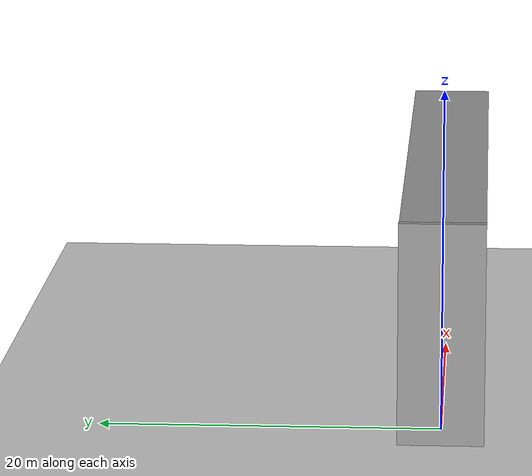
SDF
<sdf version="1.5">
 <world name="default">
  <plugin name="ros_interface_plugin" filename="librotors_gazebo_ros_interface_plugin.so"/>
  <light name="sun" type="directional">
   <pose>0 0 10 0 0 0</pose>
   <diffuse>0.8 0.8 0.8 1</diffuse>
   <specular>0.2 0.2 0.2 1</specular>
   <attenuation>
    <range>1000</range>
    <constant>0.9</constant>
    <linear>0.01</linear>
    <quadratic>0.001</quadratic>
   </attenuation>
   <direction>-0.5 0.1 -0.9</direction>
  </light>
  <model name="ground_plane">
   <static>1</static>
   <link name="ground_plane_link">
    <collision name="collision">
     <geometry><plane><normal>0 0 1</normal><size>100 100</size></plane></geometry>
     <surface><friction><ode><mu>100</mu><mu2>50</mu2></ode></friction></surface>
    </collision>
    <visual name="visual">
     <cast_shadows>0</cast_shadows>
     <geometry><plane><normal>0 0 1</normal><size>100 100</size></plane></geometry>
     <material>
      <script><uri>file://media/materials/scripts/gazebo.material</uri><name>Gazebo/Grey</name></script>
     </material>
    </visual>
   </link>
  </model>
  <gravity>0 0 -9.8</gravity>
  <magnetic_field>6e-06 2.3e-05 -4.2e-05</magnetic_field>
  <atmosphere type="adiabatic"/>
  <physics name="default_physics" default="0" type="ode">
   <max_step_size>0.001</max_step_size>
   <real_time_factor>1</real_time_factor>
   <real_time_update_rate>1000</real_time_update_rate>
  </physics>
  <scene><ambient>0.4 0.4 0.4 1</ambient><background>0.7 0.7 0.7 1</background><shadows>1</shadows></scene>
  <audio><device>default</device></audio>
  <spherical_coordinates>
   <surface_model>EARTH_WGS84</surface_model>
   <latitude_deg>0</latitude_deg>
   <longitude_deg>0</longitude_deg>
   <elevation>0</elevation>
   <heading_deg>0</heading_deg>
  </spherical_coordinates>
  <model name="ballast_tank">
   <static>true</static>
   <link name="ballast_tank_link">
    <collision name="collision">
     <geometry>
      <mesh><uri>model://ballast_tank/meshes/ballast_tank_2x_no_top.dae</uri><scale>1 1 1</scale></mesh>
     </geometry>
    </collision>
    <visual name="visual">
     <geometry>
      <mesh><uri>model://ballast_tank/meshes/ballast_tank_2x_no_top.dae</uri><scale>1 1 1</scale></mesh>
     </geometry>
     <material>
      <script><uri>model://ballast_tank/materials/scripts/repeated.material</uri><name>FullMaterial</name></script>
     </material>
    </visual>
   </link>
  </model>
  <model name="unit_box_side">
   <pose>-3.2 0.0 6.5 0.0 0.0 0.0</pose>
   <static>true</static>
   <link name="link">
    <inertial>
     <mass>1</mass>
     <inertia><ixx>0</ixx><ixy>0</ixy><ixz>0</ixz><iyy>0</iyy><iyz>0</iyz><izz>0</izz></inertia>
    </inertial>
    <collision name="collision"><geometry><box><size>0.5 5 13</size></box></geometry></collision>
    <visual name="visual">
     <geometry><box><size>0.5 5 13</size></box></geometry>
     <material>
      <script><name>Gazebo/Grey</name><uri>file://media/materials/scripts/gazebo.material</uri></script>
     </material>
    </visual>
   </link>
  </model>
  <model name="unit_box_top">
   <pose>19.0 0.0 12.5 0.0 0.0 0.0</pose>
   <static>true</static>
   <link name="link">
    <inertial>
     <mass>1</mass>
     <inertia><ixx>0</ixx><ixy>0</ixy><ixz>0</ixz><iyy>0</iyy><iyz>0</iyz><izz>0</izz></inertia>
    </inertial>
    <collision name="collision"><geometry><box><size>42 5 0.5</size></box></geometry></collision>
    <visual name="visual">
     <geometry><box><size>42 5 0.5</size></box></geometry>
     <material>
      <script><name>Gazebo/Grey</name><uri>file://media/materials/scripts/gazebo.material</uri></script>
     </material>
    </visual>
   </link>
  </model>
 </world>
</sdf>
